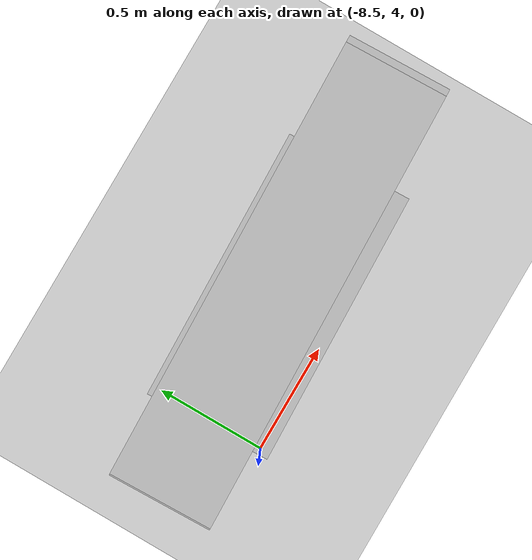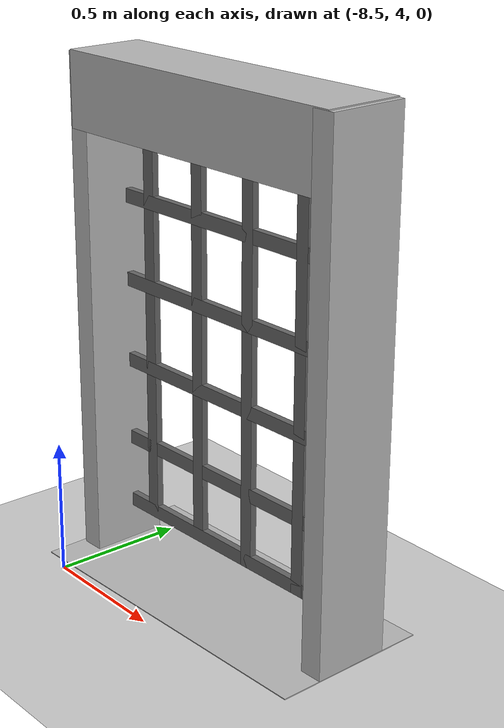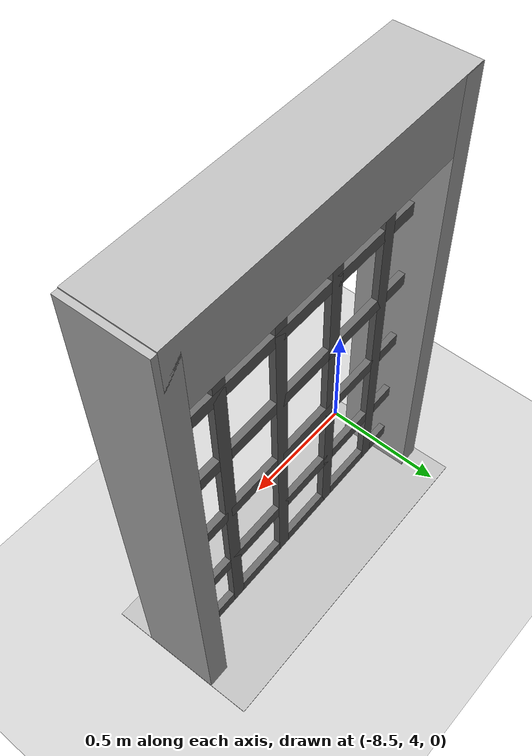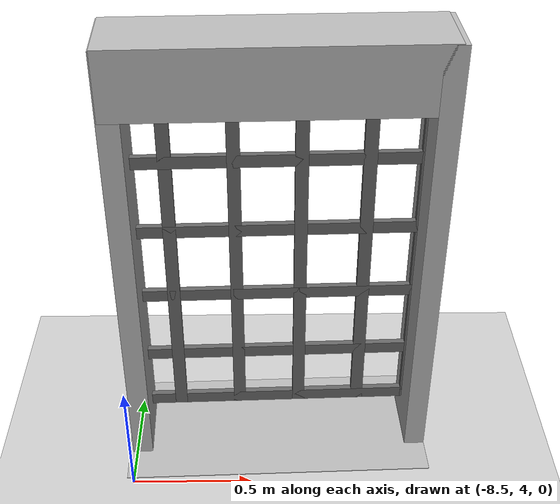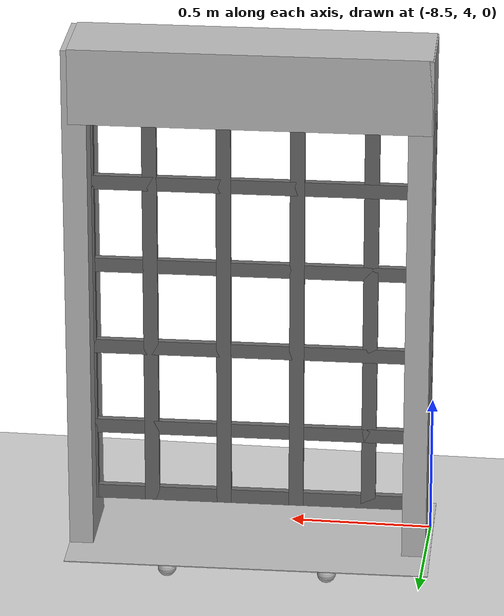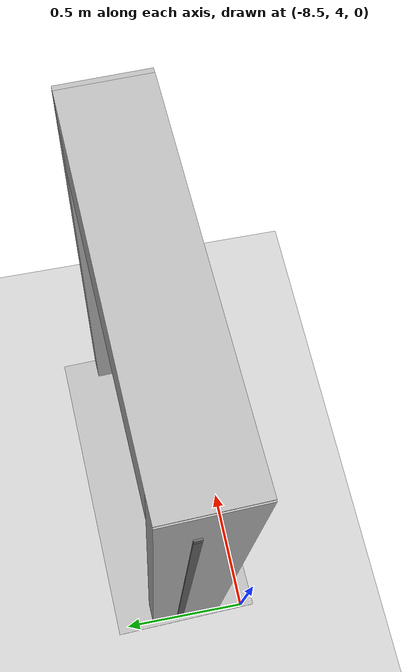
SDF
<sdf version="1.6">
 <world name="default">
  <model name="ground_plane">
   <static>1</static>
   <link name="link">
    <collision name="collision">
     <geometry><plane><normal>0 0 1</normal><size>100 100</size></plane></geometry>
     <surface>
      <contact><collide_bitmask>65535</collide_bitmask></contact>
      <friction><ode><mu>100</mu><mu2>50</mu2></ode></friction>
     </surface>
    </collision>
    <visual name="visual">
     <cast_shadows>0</cast_shadows>
     <geometry><plane><normal>0 0 1</normal><size>100 100</size></plane></geometry>
     <material>
      <script><uri>file://media/materials/scripts/gazebo.material</uri><name>Gazebo/Grey</name></script>
     </material>
    </visual>
   </link>
  </model>
  <model name="frc2016_portcullis">
   <link name="base">
    <inertial>
     <mass>50</mass>
     <pose>0 0 1.02941 0 -0 0</pose>
     <inertia><ixx>3.81711</ixx><ixy>0</ixy><ixz>0</ixz><iyy>4.87698</iyy><iyz>0</iyz><izz>1.6283</izz></inertia>
    </inertial>
    <visual name="platform">
     <pose>0 0 0.07284 0 -0 0</pose>
     <geometry><box><size>1.27 0.5842 0.003175</size></box></geometry>
    </visual>
    <collision name="platform">
     <pose>0 0 0.07284 0 -0 0</pose>
     <geometry><box><size>1.27 0.5842 0.003175</size></box></geometry>
    </collision>
    <visual name="left_column">
     <pose>0.59284 0 0.99042 0 -0 0</pose>
     <geometry><box><size>0.08375 0.28575 1.83198</size></box></geometry>
    </visual>
    <collision name="left_column">
     <pose>0.59284 0 0.99042 0 -0 0</pose>
     <geometry><box><size>0.08375 0.28575 1.83198</size></box></geometry>
    </collision>
    <visual name="right_column">
     <pose>-0.57759 0 0.99042 0 -0 0</pose>
     <geometry><box><size>0.08375 0.28575 1.83198</size></box></geometry>
    </visual>
    <collision name="right_column">
     <pose>-0.57759 0 0.99042 0 -0 0</pose>
     <geometry><box><size>0.08375 0.28575 1.83198</size></box></geometry>
    </collision>
    <visual name="top">
     <pose>-0.00034 0 1.77722 0 -0 0</pose>
     <geometry><box><size>1.22962 0.28575 0.26657</size></box></geometry>
    </visual>
    <collision name="top">
     <pose>-0.00034 0 1.77722 0 -0 0</pose>
     <geometry><box><size>1.22962 0.28575 0.26657</size></box></geometry>
    </collision>
    <visual name="castor1">
     <pose>-0.45651 -0.16234 0.03272 0 -0 0</pose>
     <geometry><sphere><radius>0.03272</radius></sphere></geometry>
    </visual>
    <collision name="castor1">
     <pose>-0.45651 -0.16234 0.03272 0 -0 0</pose>
     <geometry><sphere><radius>0.03272</radius></sphere></geometry>
    </collision>
    <visual name="castor2">
     <pose>-0.27883 0.21836 0.03272 0 -0 0</pose>
     <geometry><sphere><radius>0.03272</radius></sphere></geometry>
    </visual>
    <collision name="castor2">
     <pose>-0.27883 0.21836 0.03272 0 -0 0</pose>
     <geometry><sphere><radius>0.03272</radius></sphere></geometry>
    </collision>
    <visual name="castor3">
     <pose>0.28083 0.21906 0.03272 0 -0 0</pose>
     <geometry><sphere><radius>0.03272</radius></sphere></geometry>
    </visual>
    <collision name="castor3">
     <pose>0.28083 0.21906 0.03272 0 -0 0</pose>
     <geometry><sphere><radius>0.03272</radius></sphere></geometry>
    </collision>
    <visual name="castor4">
     <pose>0.45871 -0.16186 0.03272 0 -0 0</pose>
     <geometry><sphere><radius>0.03272</radius></sphere></geometry>
    </visual>
    <collision name="castor4">
     <pose>0.45871 -0.16186 0.03272 0 -0 0</pose>
     <geometry><sphere><radius>0.03272</radius></sphere></geometry>
    </collision>
   </link>
   <link name="gate">
    <pose>-0.0287 0.02885 0.93327 0 -0 0</pose>
    <inertial>
     <mass>2</mass>
     <inertia><ixx>3.81711</ixx><ixy>0</ixy><ixz>0</ixz><iyy>4.87698</iyy><iyz>0</iyz><izz>1.6283</izz></inertia>
    </inertial>
    <collision name="collision"><geometry><box><size>1.1938 0.02496 1.45732</size></box></geometry></collision>
    <visual name="horz_1">
     <pose>0 0 -0.70326 0 -0 0</pose>
     <geometry><box><size>1.1938 0.02496 0.0508</size></box></geometry>
     <material><ambient>0.4 0.4 0.4 1</ambient><diffuse>0.4 0.4 0.4 1</diffuse></material>
    </visual>
    <visual name="horz_2">
     <pose>0 0 -0.44926 0 -0 0</pose>
     <geometry><box><size>1.1938 0.02496 0.0508</size></box></geometry>
     <material><ambient>0.4 0.4 0.4 1</ambient><diffuse>0.4 0.4 0.4 1</diffuse></material>
    </visual>
    <visual name="horz_3">
     <pose>0 0 -0.14517 0 -0 0</pose>
     <geometry><box><size>1.1938 0.02496 0.0508</size></box></geometry>
     <material><ambient>0.4 0.4 0.4 1</ambient><diffuse>0.4 0.4 0.4 1</diffuse></material>
    </visual>
    <visual name="horz_4">
     <pose>0 0 0.16034 0 -0 0</pose>
     <geometry><box><size>1.1938 0.02496 0.0508</size></box></geometry>
     <material><ambient>0.4 0.4 0.4 1</ambient><diffuse>0.4 0.4 0.4 1</diffuse></material>
    </visual>
    <visual name="horz_5">
     <pose>0 0 0.46514 0 -0 0</pose>
     <geometry><box><size>1.1938 0.02496 0.0508</size></box></geometry>
     <material><ambient>0.4 0.4 0.4 1</ambient><diffuse>0.4 0.4 0.4 1</diffuse></material>
    </visual>
    <visual name="horz_6">
     <pose>0 0 0.72994 0 -0 0</pose>
     <geometry><box><size>1.1938 0.02496 0.0508</size></box></geometry>
     <material><ambient>0.4 0.4 0.4 1</ambient><diffuse>0.4 0.4 0.4 1</diffuse></material>
    </visual>
    <visual name="vert_1">
     <pose>-0.58448 0 0 0 -0 0</pose>
     <geometry><box><size>0.02495 0.02496 1.45732</size></box></geometry>
     <material><ambient>0.4 0.4 0.4 1</ambient><diffuse>0.4 0.4 0.4 1</diffuse></material>
    </visual>
    <visual name="vert_2">
     <pose>-0.38128 0 0 0 -0 0</pose>
     <geometry><box><size>0.0508 0.02496 1.45732</size></box></geometry>
     <material><ambient>0.4 0.4 0.4 1</ambient><diffuse>0.4 0.4 0.4 1</diffuse></material>
    </visual>
    <visual name="vert_3">
     <pose>-0.12728 0 0 0 -0 0</pose>
     <geometry><box><size>0.0508 0.02496 1.45732</size></box></geometry>
     <material><ambient>0.4 0.4 0.4 1</ambient><diffuse>0.4 0.4 0.4 1</diffuse></material>
    </visual>
    <visual name="vert_4">
     <pose>0.12672 0 0 0 -0 0</pose>
     <geometry><box><size>0.0508 0.02496 1.45732</size></box></geometry>
     <material><ambient>0.4 0.4 0.4 1</ambient><diffuse>0.4 0.4 0.4 1</diffuse></material>
    </visual>
    <visual name="vert_5">
     <pose>0.38072 0 0 0 -0 0</pose>
     <geometry><box><size>0.0508 0.02496 1.45732</size></box></geometry>
     <material><ambient>0.4 0.4 0.4 1</ambient><diffuse>0.4 0.4 0.4 1</diffuse></material>
    </visual>
    <visual name="vert_6">
     <pose>0.58392 0 0 0 -0 0</pose>
     <geometry><box><size>0.02495 0.02496 1.45732</size></box></geometry>
     <material><ambient>0.4 0.4 0.4 1</ambient><diffuse>0.4 0.4 0.4 1</diffuse></material>
    </visual>
   </link>
   <joint name="joint" type="prismatic">
    <parent>base</parent>
    <child>gate</child>
    <axis>
     <xyz>0 0 1</xyz>
     <limit><lower>0</lower><upper>1</upper></limit>
     <use_parent_model_frame>0</use_parent_model_frame>
     <dynamics><spring_reference>0</spring_reference><spring_stiffness>0</spring_stiffness></dynamics>
    </axis>
   </joint>
   <pose>-7.89076 4.2672 -1e-06 -2e-06 2e-06 0.029811</pose>
  </model>
 </world>
</sdf>
